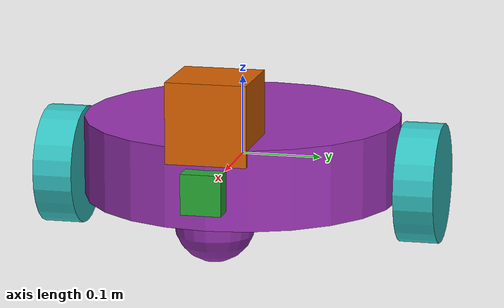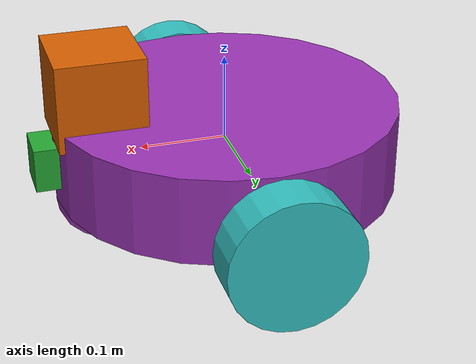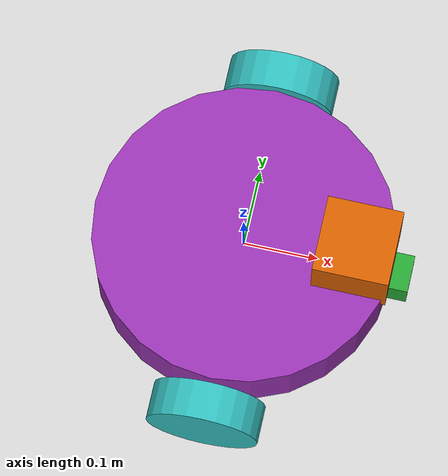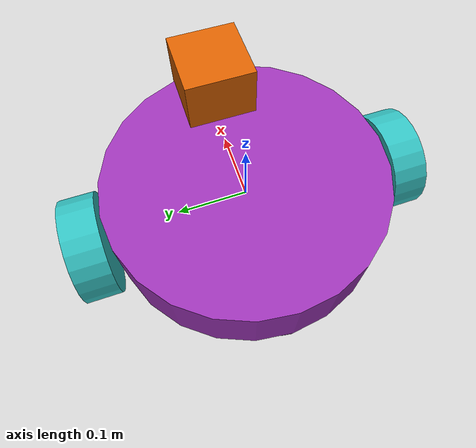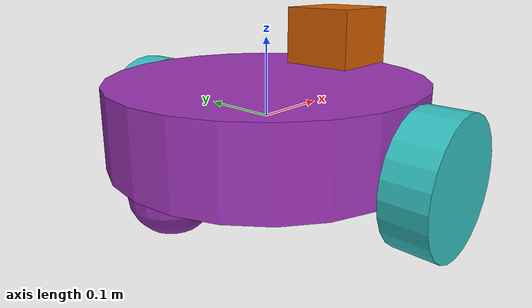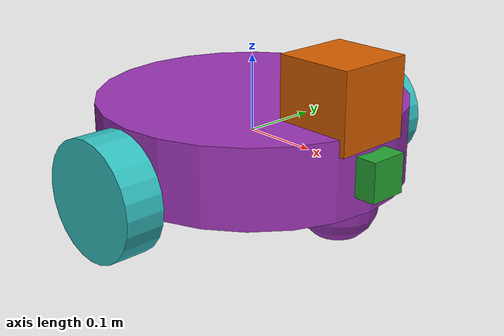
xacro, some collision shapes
<?xml version='1.0'?>

<robot name="my_robot" xmlns:xacro="http://www.ros.org/wiki/xacro">

  <xacro:include filename="$(find my_robot)/urdf/my_robot.gazebo" />

  <link name="robot_footprint"></link>

  <joint name="robot_footprint_joint" type="fixed">
    <origin xyz="0 0 0" rpy="0 0 0" />
    <parent link="robot_footprint"/>
    <child link="chassis" />
  </joint>

  <link name="chassis">
    <pose>0 0 0.1 0 0 0 </pose>
    <inertial>
      <origin xyz="0.0 0.0 0.0" rpy="0.0 0.0 0.0"/>
      <mass value="15.0"/>
      <inertia
          ixx="0.1" ixy="0" ixz="0"
          iyy="0.1" iyz="0"
          izz="0.1"
      />
    </inertial>
    <visual name='chassis_visual'>
      <origin xyz="0.0 0.0 0.0" rpy="0.0 0.0 0.0"/>
      <geometry>
        <cylinder radius="0.2" length="0.1"/>
      </geometry>
    </visual>
    <collision name='chassis_collision'>
      <origin xyz="0.0 0.0 0.0" rpy="0.0 0.0 0.0"/>
      <geometry>
        <cylinder radius="0.2" length="0.1"/>
      </geometry>
    </collision>

    <collision name='back_caster_collision'>
      <origin xyz="-0.15 0 -0.05" rpy=" 0 0 0"/>
      <geometry>
        <sphere radius="0.0499"/>
      </geometry>
    </collision>

    <visual name='back_caster_visual'>
      <origin xyz="-0.15 0 -0.05" rpy=" 0 0 0"/>
      <geometry>
        <sphere radius="0.05"/>
      </geometry>
    </visual>

    <collision name='front_caster_collision'>
      <origin xyz="0.15 0 -0.05" rpy=" 0 0 0"/>
      <geometry>
        <sphere radius="0.0499"/>
      </geometry>
    </collision>

    <visual name='front_caster_visual'>
      <origin xyz="0.15 0 -0.05" rpy=" 0 0 0"/>
      <geometry>
        <sphere radius="0.05"/>
      </geometry>
    </visual>
  </link>

  <link name="left_wheel">

    <collision>
      <origin xyz="0.0 0 0" rpy="  0 1.5707 1.5707"/>
      <geometry>
        <cylinder radius="0.075" length="0.05"/>
      </geometry>
    </collision>

    <inertial>
      <mass value="5.0"/>
      <origin xyz="0.0 0 0" rpy="  0 1.5707 1.5707"/>
      <inertia
          ixx="0.075" ixy="0" ixz="0"
          iyy="0.075" iyz="0"
          izz="0.075"
      />
    </inertial>

    <visual>
      <origin xyz="0.0 0 0" rpy="  0 1.5707 1.5707"/>
      <geometry>
        <cylinder radius="0.075" length="0.05"/>
      </geometry>
    </visual>

  </link>

  <joint type="continuous" name="left_wheel_hinge">
    <origin xyz="0 0.23 -0.025" rpy="0 0 0"/>
    <child link="left_wheel"/>
    <parent link="chassis"/>
    <axis xyz="0 1 0" rpy="0 0 0"/>
    <limit effort="10000" velocity="1000"/>
    <dynamics damping="1.0" friction="1.0"/>
  </joint>

  <link name="right_wheel">

    <collision>
      <origin xyz="0.0 0 0" rpy="  0 1.5707 1.5707"/>
      <geometry>
        <cylinder radius="0.075" length="0.05"/>
      </geometry>
    </collision>

    <inertial>
      <mass value="5.0"/>
      <origin xyz="0.0 0 0" rpy="  0 1.5707 1.5707"/>
      <inertia
          ixx="0.075" ixy="0" ixz="0"
          iyy="0.075" iyz="0"
          izz="0.075"
      />
    </inertial>

    <visual>
      <origin xyz="0.0 0 0" rpy="  0 1.5707 1.5707"/>
      <geometry>
        <cylinder radius="0.075" length="0.05"/>
      </geometry>
    </visual>

  </link>

  <joint type="continuous" name="right_wheel_hinge">
    <origin xyz="0 -0.23 -0.025" rpy="0 0 0"/>
    <child link="right_wheel"/>
    <parent link="chassis"/>
    <axis xyz="0 1 0" rpy="0 0 0"/>
    <limit effort="10000" velocity="1000"/>
    <dynamics damping="1.0" friction="1.0"/>
  </joint>

  <link name="camera_link">

    <collision>
      <origin xyz="0 0 0" rpy="0 0 0"/>
      <geometry>
        <box size="0.05 0.05 0.05"/>
      </geometry>
    </collision>

    <inertial>
      <mass value="0.1"/>
      <origin xyz="0 0 0" rpy="0 0 0"/>
      <inertia
          ixx="1e-6" ixy="0" ixz="0"
          iyy="1e-6" iyz="0"
          izz="1e-6"
      />
    </inertial>

    <visual>
      <origin xyz="0 0 0" rpy="0 0 0"/>
      <geometry>
        <box size="0.05 0.05 0.05"/>
      </geometry>
    </visual>

  </link>

  <joint type="fixed" name="camera_joint">
    <origin xyz="0.2 0 0" rpy="0 0 0"/>
    <child link="camera_link"/>
    <parent link="chassis"/>
    <axis xyz="0 1 0" rpy="0 0 0"/>
  </joint>

  <link name="hokuyo">
    <collision>
      <origin xyz="0 0 0" rpy="0 0 0"/>
      <geometry>
        <box size="0.1 0.1 0.1"/>
      </geometry>
    </collision>

    <inertial>
      <mass value="1e-5"/>
      <origin xyz="0 0 0" rpy="0 0 0"/>
      <inertia
          ixx="1e-6" ixy="0" ixz="0"
          iyy="1e-6" iyz="0"
          izz="1e-6"
      />
    </inertial>

    <visual>
      <origin xyz="0 0 0" rpy="0 0 0"/>
      <geometry>
        <mesh filename="package://my_robot/meshes/hokuyo.dae"/>
      </geometry>
    </visual>
  </link>

  <joint name="hokuyo_joint" type="fixed">
    <origin xyz="0.15 0 0.08" rpy="0 0 0"/>
    <child link="hokuyo"/>
    <parent link="chassis"/>
    <axis xyz="0 1 0" rpy="0 0 0"/>
  </joint>

  <joint name="camera_optical_joint" type="fixed">
    <origin xyz="0 0 0" rpy="-1.5707 0 -1.5707"/>
    <parent link="camera_link"/>
    <child link="camera_link_optical"/>
  </joint>

  <link name="camera_link_optical">
  </link>

  <gazebo reference="left_wheel">
    <material>Gazebo/Turquoise</material>
  </gazebo>

  <gazebo reference="right_wheel">
    <material>Gazebo/Turquoise</material>
  </gazebo>

  <gazebo reference="camera_link">
    <material>Gazebo/Green</material>
  </gazebo>

  <gazebo reference="chassis">
    <material>Gazebo/Purple</material>
  </gazebo>

</robot>
